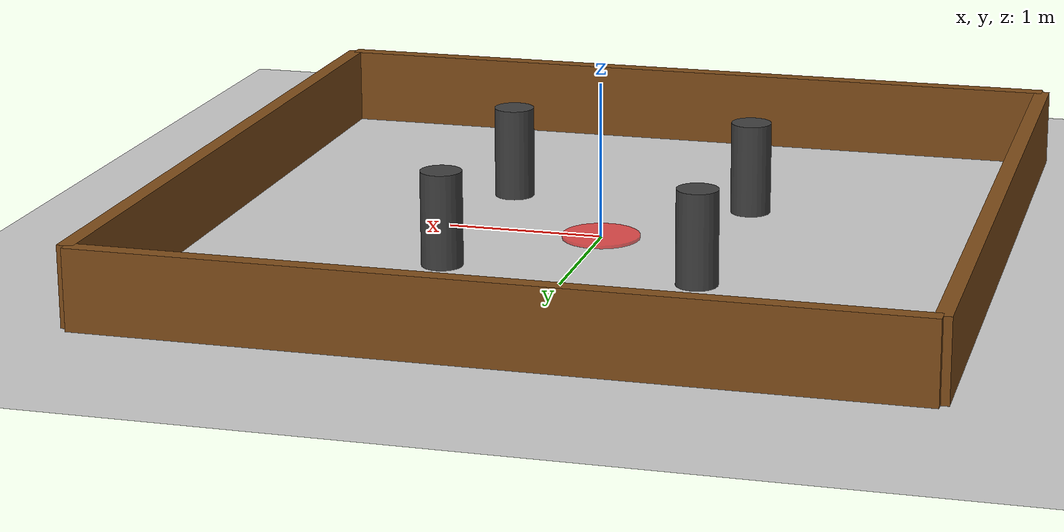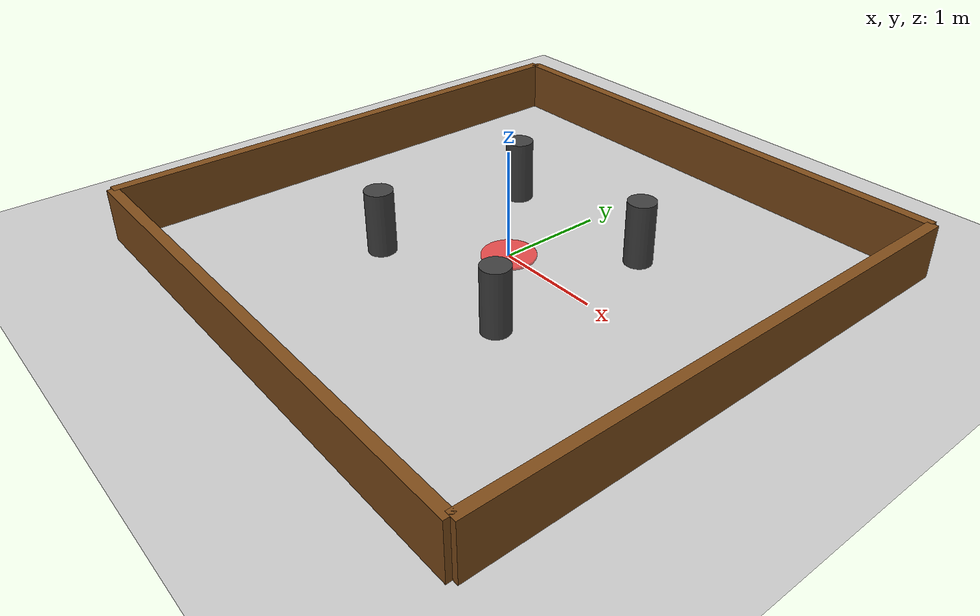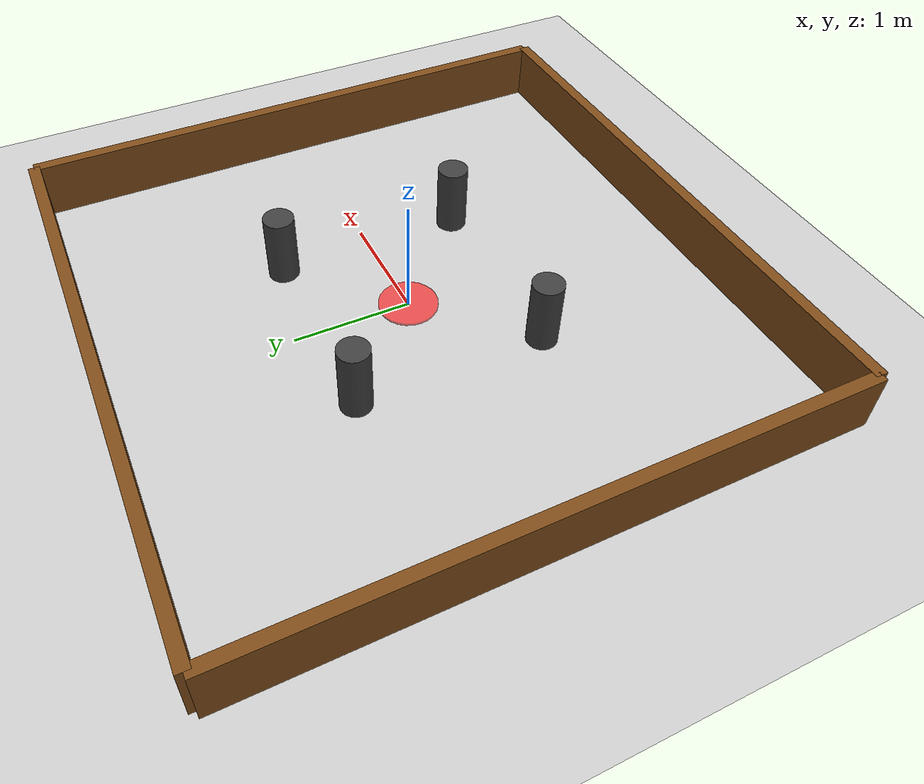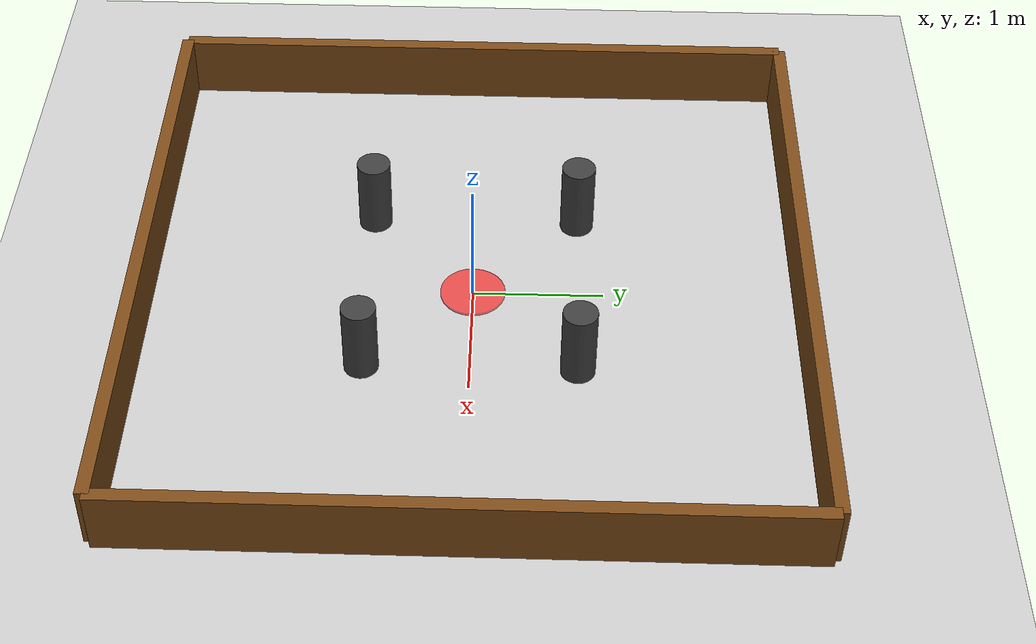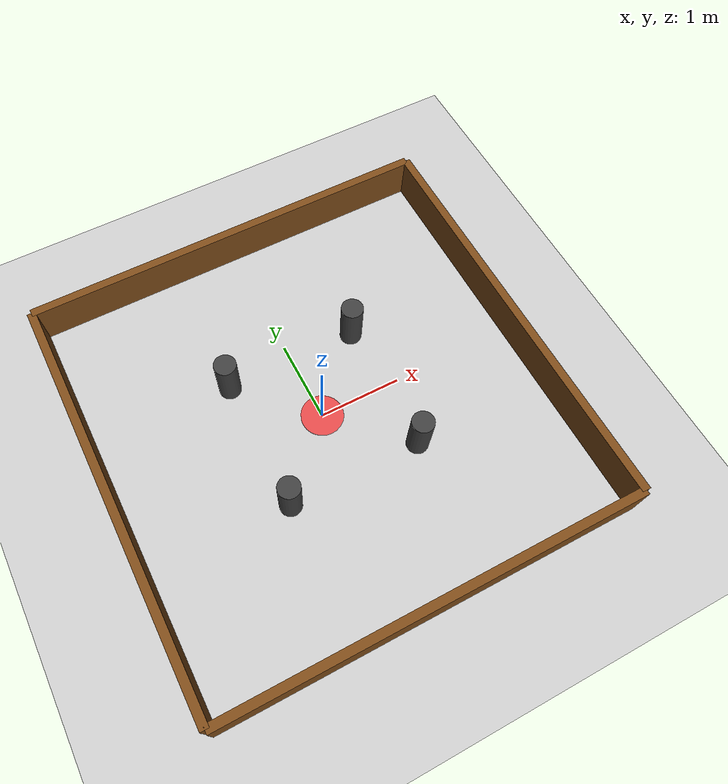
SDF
<?xml version="1.0" ?>
<sdf version="1.8">
  <world name="arena">

    <physics name="1ms" type="ignored">
      <max_step_size>0.001</max_step_size>
      <real_time_factor>1.0</real_time_factor>
    </physics>

    <plugin filename="gz-sim-physics-system" name="gz::sim::systems::Physics"/>
    <plugin filename="gz-sim-sensors-system" name="gz::sim::systems::Sensors">
      <render_engine>ogre2</render_engine>
    </plugin>
    <plugin filename="gz-sim-user-commands-system" name="gz::sim::systems::UserCommands"/>
    <plugin filename="gz-sim-scene-broadcaster-system" name="gz::sim::systems::SceneBroadcaster"/>

    <scene>
      <ambient>0.8 0.8 0.8 1</ambient>
      <background>1 1 1 1</background>
      <shadows>false</shadows>
    </scene>

    <light type="directional" name="sun">
      <cast_shadows>false</cast_shadows>
      <pose>0 0 10 0 0 0</pose>
      <diffuse>1 1 1 1</diffuse>
      <direction>-0.5 0.1 -0.9</direction>
    </light>

    <model name="ground_plane">
      <static>true</static>
      <link name="link">
        <collision name="c">
          <geometry>
            <plane>
              <normal>0 0 1</normal>
              <size>100 100</size>
            </plane>
          </geometry>
        </collision>
        <visual name="v">
          <geometry>
            <plane>
              <normal>0 0 1</normal>
              <size>100 100</size>
            </plane>
          </geometry>
          <material>
            <ambient>0.8 0.8 0.8 1</ambient>
            <diffuse>0.8 0.8 0.8 1</diffuse>
          </material>
        </visual>
      </link>
    </model>

    <model name="goal_marker">
      <pose>0.0 0.0 0.01 0 0 0</pose>
      <static>true</static>
      <link name="link">
        <visual name="visual">
          <geometry><cylinder><radius>0.25</radius><length>0.02</length></cylinder></geometry>
          <material>
            <ambient>1.0 0.0 0.0 0.6</ambient>
            <diffuse>1.0 0.0 0.0 0.6</diffuse>
            <emissive>1.0 0.0 0.0 0.6</emissive>
          </material>
        </visual>
      </link>
    </model>

    <model name="wall_north">
      <static>true</static>
      <pose>0 2.5 0.25 0 0 0</pose>
      <link name="link">
        <collision name="c">
          <geometry><box><size>5.0 0.1 0.5</size></box></geometry>
        </collision>
        <visual name="v">
          <geometry><box><size>5.0 0.1 0.5</size></box></geometry>
          <material><ambient>0.5 0.3 0.1 1</ambient><diffuse>0.5 0.3 0.1 1</diffuse></material>
        </visual>
      </link>
    </model>

    <model name="wall_south">
      <static>true</static>
      <pose>0 -2.5 0.25 0 0 0</pose>
      <link name="link">
        <collision name="c">
          <geometry><box><size>5.0 0.1 0.5</size></box></geometry>
        </collision>
        <visual name="v">
          <geometry><box><size>5.0 0.1 0.5</size></box></geometry>
          <material><ambient>0.5 0.3 0.1 1</ambient><diffuse>0.5 0.3 0.1 1</diffuse></material>
        </visual>
      </link>
    </model>

    <model name="wall_east">
      <static>true</static>
      <pose>2.5 0 0.25 0 0 0</pose>
      <link name="link">
        <collision name="c">
          <geometry><box><size>0.1 5.0 0.5</size></box></geometry>
        </collision>
        <visual name="v">
          <geometry><box><size>0.1 5.0 0.5</size></box></geometry>
          <material><ambient>0.5 0.3 0.1 1</ambient><diffuse>0.5 0.3 0.1 1</diffuse></material>
        </visual>
      </link>
    </model>

    <model name="wall_west">
      <static>true</static>
      <pose>-2.5 0 0.25 0 0 0</pose>
      <link name="link">
        <collision name="c">
          <geometry><box><size>0.1 5.0 0.5</size></box></geometry>
        </collision>
        <visual name="v">
          <geometry><box><size>0.1 5.0 0.5</size></box></geometry>
          <material><ambient>0.5 0.3 0.1 1</ambient><diffuse>0.5 0.3 0.1 1</diffuse></material>
        </visual>
      </link>
    </model>

    <model name="pillar_ne">
      <static>true</static>
      <pose>0.8 0.8 0.30 0 0 0</pose>
      <link name="link">
        <collision name="collision">
          <geometry>
            <cylinder>
              <radius>0.13</radius> <length>0.60</length>
            </cylinder>
          </geometry>
        </collision>
        <visual name="visual">
          <geometry>
            <cylinder>
              <radius>0.13</radius> <length>0.60</length>
            </cylinder>
          </geometry>
          <material>
            <ambient>0.25 0.25 0.25 1</ambient>
            <diffuse>0.25 0.25 0.25 1</diffuse>
          </material>
        </visual>
      </link>
    </model>

    <model name="pillar_nw">
      <static>true</static>
      <pose>-0.8 0.8 0.30 0 0 0</pose>
      <link name="link">
        <collision name="collision">
          <geometry>
            <cylinder>
              <radius>0.13</radius> <length>0.60</length>
            </cylinder>
          </geometry>
        </collision>
        <visual name="visual">
          <geometry>
            <cylinder>
              <radius>0.13</radius> <length>0.60</length>
            </cylinder>
          </geometry>
          <material>
            <ambient>0.25 0.25 0.25 1</ambient>
            <diffuse>0.25 0.25 0.25 1</diffuse>
          </material>
        </visual>
      </link>
    </model>

    <model name="pillar_se">
      <static>true</static>
      <pose>0.8 -0.8 0.30 0 0 0</pose>
      <link name="link">
        <collision name="collision">
          <geometry>
            <cylinder>
              <radius>0.13</radius> <length>0.60</length>
            </cylinder>
          </geometry>
        </collision>
        <visual name="visual">
          <geometry>
            <cylinder>
              <radius>0.13</radius> <length>0.60</length>
            </cylinder>
          </geometry>
          <material>
            <ambient>0.25 0.25 0.25 1</ambient>
            <diffuse>0.25 0.25 0.25 1</diffuse>
          </material>
        </visual>
      </link>
    </model>

    <model name="pillar_sw">
      <static>true</static>
      <pose>-0.8 -0.8 0.30 0 0 0</pose>
      <link name="link">
        <collision name="collision">
          <geometry>
            <cylinder>
              <radius>0.13</radius> <length>0.60</length>
            </cylinder>
          </geometry>
        </collision>
        <visual name="visual">
          <geometry>
            <cylinder>
              <radius>0.13</radius> <length>0.60</length>
            </cylinder>
          </geometry>
          <material>
            <ambient>0.25 0.25 0.25 1</ambient>
            <diffuse>0.25 0.25 0.25 1</diffuse>
          </material>
        </visual>
      </link>
    </model>

  </world>
</sdf>
